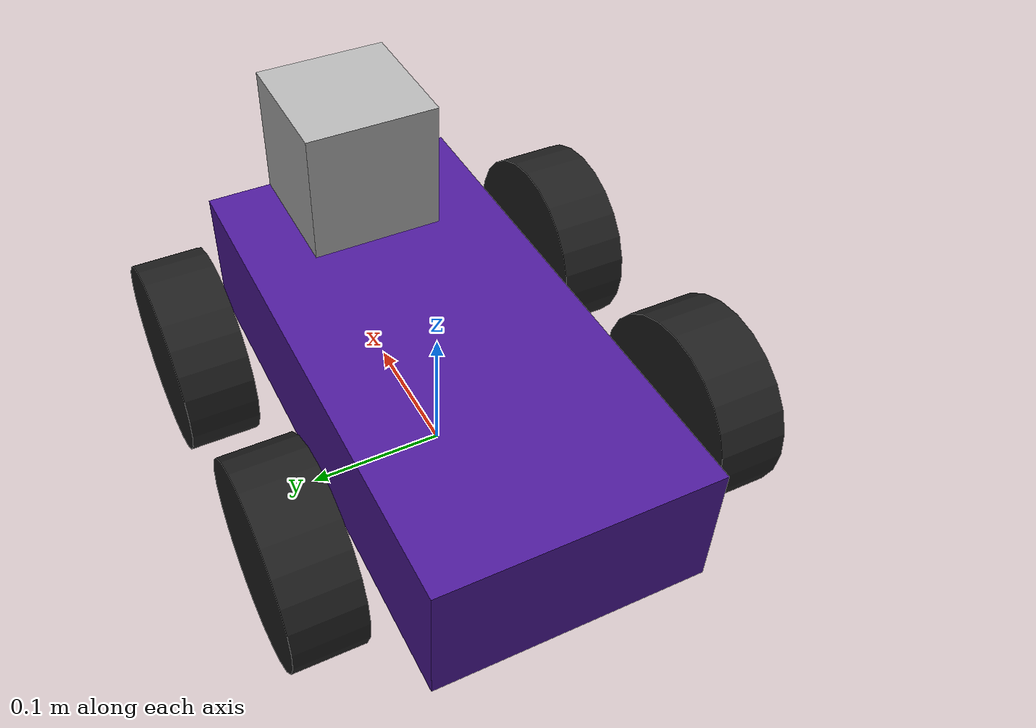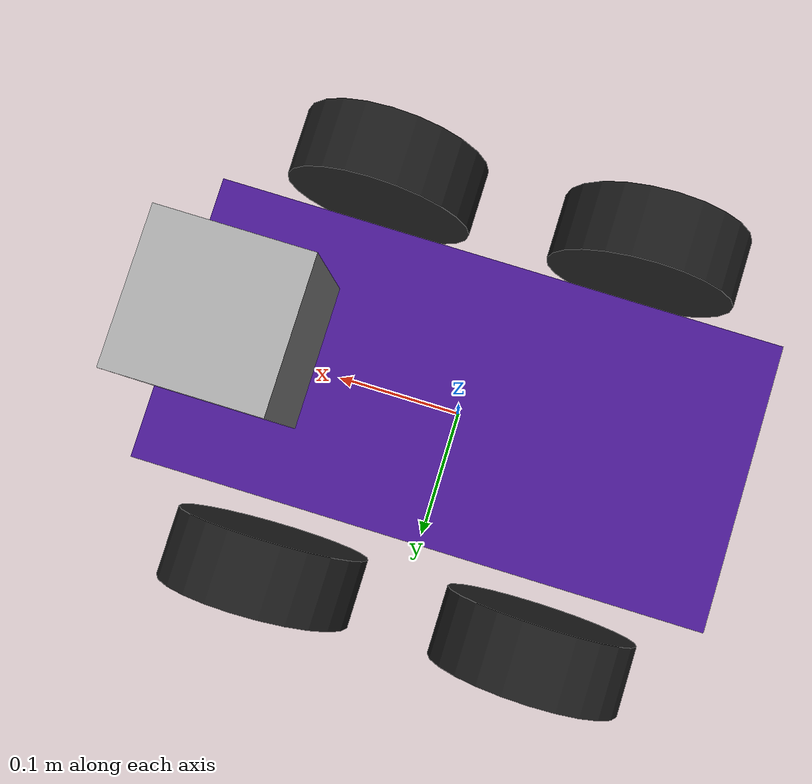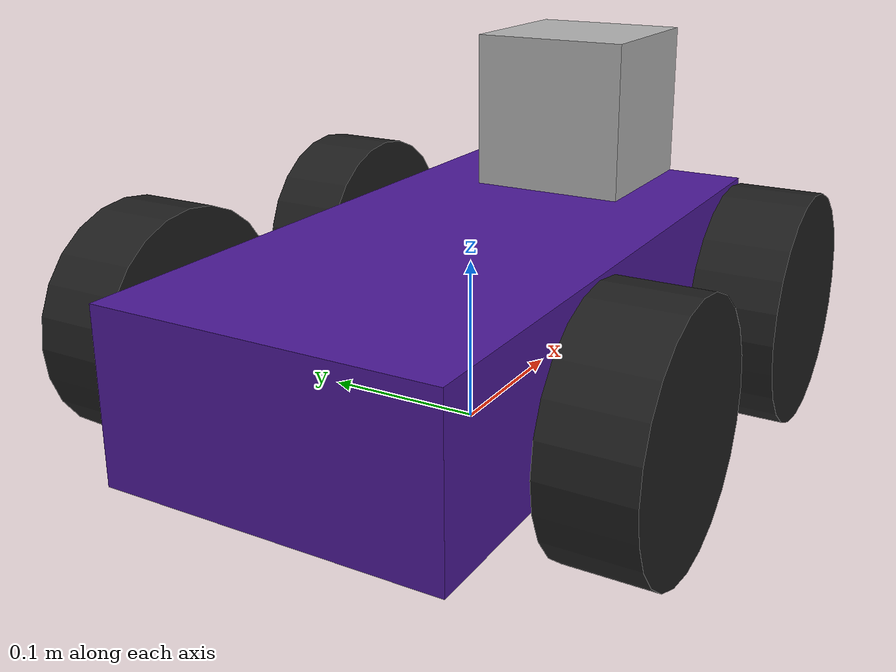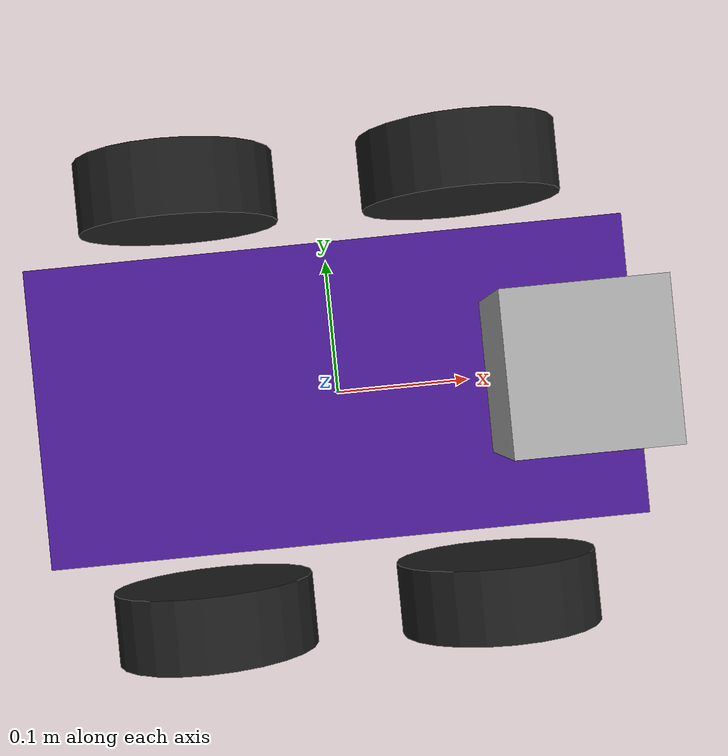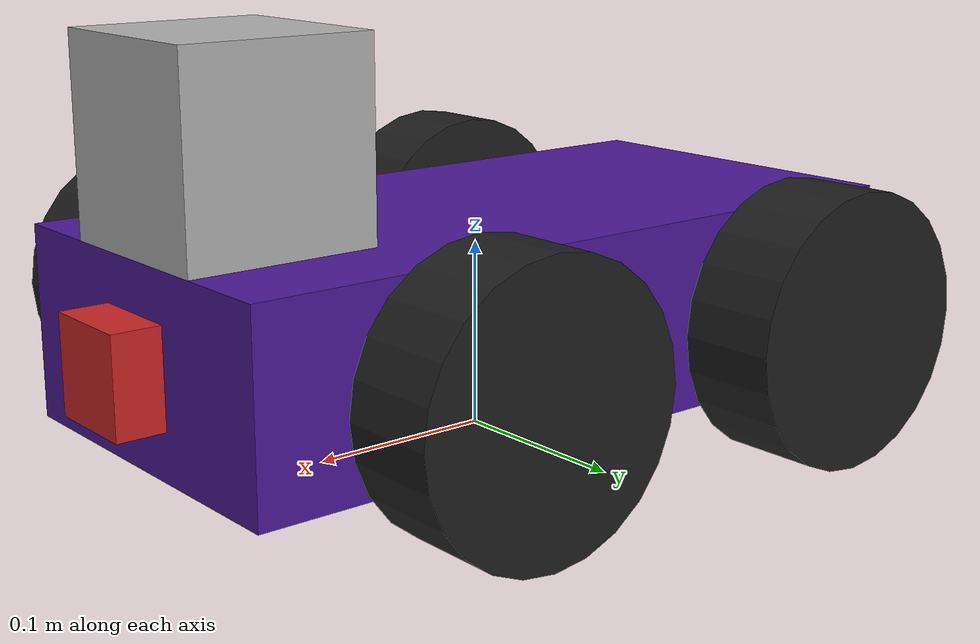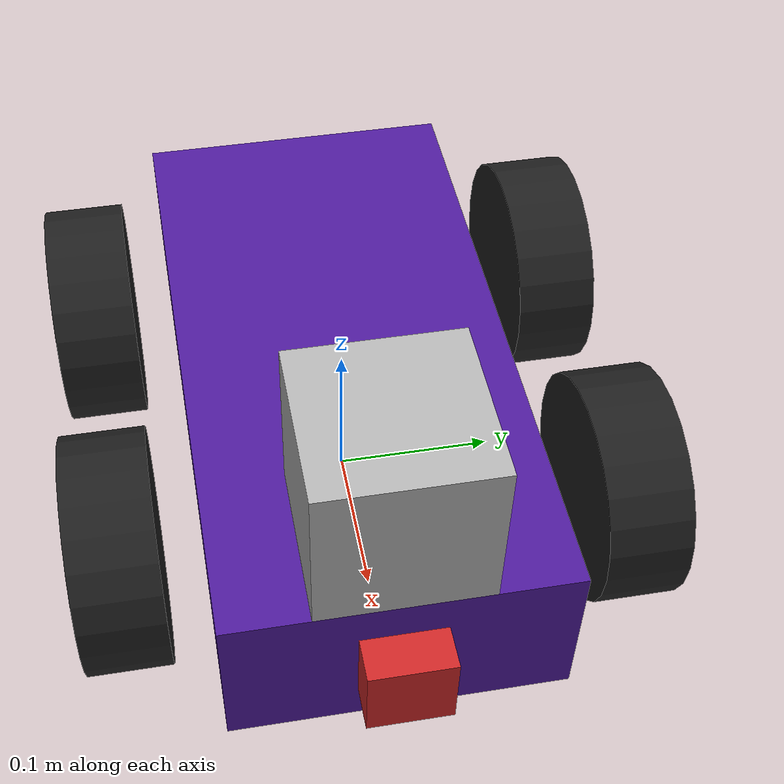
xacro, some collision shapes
<?xml version='1.0'?>

<robot name="my_robot" xmlns:xacro="http://www.ros.org/wiki/xacro">

  <xacro:include filename="$(find my_robot)/urdf/my_robot.gazebo" />

  <link name="robot_footprint"></link>

  <joint name="robot_footprint_joint" type="fixed">
    <origin xyz="0 0 0.07" rpy="0 0 0" />
    <parent link="robot_footprint"/>
    <child link="chassis" />
  </joint>

  <link name='chassis'>
    <pose>0 0 0.1 0 0 0</pose>

    <inertial>
      <mass value="15.0"/>
      <origin xyz="0.0 0 0" rpy=" 0 0 0"/>
      <inertia
          ixx="0.1" ixy="0" ixz="0"
          iyy="0.1" iyz="0"
          izz="0.1"
      />
    </inertial>

    <collision name='collision'>
      <origin xyz="0 0 0" rpy=" 0 0 0"/>
      <geometry>
        <box size=".5 .3 .1"/>
      </geometry>
    </collision>

    <visual name='chassis_visual'>
      <origin xyz="0 0 0" rpy=" 0 0 0"/>
      <geometry>
        <box size=".4 .2 .1"/>
      </geometry>
    </visual>

  </link>

   <link name='left_wheel_f'>

    <inertial>
      <mass value="5.0"/>
      <origin xyz="0 0 0" rpy=" 0 1.5707 1.5707"/>
      <inertia
          ixx="0.1" ixy="0" ixz="0"
          iyy="0.1" iyz="0"
          izz="0.1"
      />
    </inertial>

    <collision>
     <origin xyz="0 0 0" rpy=" 0 1.5707 1.5707"/>
      <geometry>
        <cylinder radius="0.07" length="0.05"/>
      </geometry>
    </collision>

    <visual>
      <origin xyz="0 0 0" rpy=" 0 1.5707 1.5707"/>
      <geometry>
        <cylinder radius="0.07" length="0.05"/>
      </geometry>
    </visual>

  </link>

  <joint type="continuous" name="left_wheel_hinge_f">
    <origin xyz="0.10 0.15 0" rpy="0 0 0"/>
    <child link="left_wheel_f"/>
    <parent link="chassis"/>
    <axis xyz="0 1 0" rpy="0 0 0"/>
    <limit effort="10000" velocity="1000"/>
    <dynamics damping="1.0" friction="1.0"/>
  </joint>

<link name='right_wheel_f'>

    <inertial>
      <mass value="5.0"/>
      <origin xyz="0 0 0" rpy=" 0 1.5707 1.5707"/>
      <inertia
          ixx="0.1" ixy="0" ixz="0"
          iyy="0.1" iyz="0"
          izz="0.1"
      />
    </inertial>

    <collision>
      <origin xyz="0 0 0" rpy=" 0 1.5707 1.5707"/>
      <geometry>
        <cylinder radius="0.07" length="0.05"/>
      </geometry>
    </collision>

    <visual>
      <origin xyz="0 0 0" rpy=" 0 1.5707 1.5707"/>
      <geometry>
        <cylinder radius="0.07" length="0.05"/>
      </geometry>
    </visual>

  </link>

  <joint type="continuous" name="right_wheel_hinge_f">
    <origin xyz="0.10 -0.15 0" rpy="0 0 0"/>
    <child link="right_wheel_f"/>
    <parent link="chassis"/>
    <axis xyz="0 1 0" rpy="0 0 0"/>
    <limit effort="10000" velocity="1000"/>
    <dynamics damping="1.0" friction="1.0"/>
  </joint>

  <link name='left_wheel_b'>

    <inertial>
      <mass value="5.0"/>
      <origin xyz="0 0 0" rpy=" 0 1.5707 1.5707"/>
      <inertia
          ixx="0.1" ixy="0" ixz="0"
          iyy="0.1" iyz="0"
          izz="0.1"
      />
    </inertial>

    <collision>
     <origin xyz="0 0 0" rpy=" 0 1.5707 1.5707"/>
      <geometry>
        <cylinder radius="0.07" length="0.05"/>
      </geometry>
    </collision>

    <visual>
      <origin xyz="0 0 0" rpy=" 0 1.5707 1.5707"/>
      <geometry>
        <cylinder radius="0.07" length="0.05"/>
      </geometry>
    </visual>

  </link>

  <joint type="continuous" name="left_wheel_hinge_b">
    <origin xyz="-0.10 0.15 0" rpy="0 0 0"/>
    <child link="left_wheel_b"/>
    <parent link="chassis"/>
    <axis xyz="0 1 0" rpy="0 0 0"/>
    <limit effort="10000" velocity="1000"/>
    <dynamics damping="1.0" friction="1.0"/>
  </joint>

<link name='right_wheel_b'>

    <inertial>
      <mass value="5.0"/>
      <origin xyz="0 0 0" rpy=" 0 1.5707 1.5707"/>
      <inertia
          ixx="0.1" ixy="0" ixz="0"
          iyy="0.1" iyz="0"
          izz="0.1"
      />
    </inertial>

    <collision>
      <origin xyz="0 0 0" rpy=" 0 1.5707 1.5707"/>
      <geometry>
        <cylinder radius="0.07" length="0.05"/>
      </geometry>
    </collision>

    <visual>
      <origin xyz="0 0 0" rpy=" 0 1.5707 1.5707"/>
      <geometry>
        <cylinder radius="0.07" length="0.05"/>
      </geometry>
    </visual>

  </link>

  <joint type="continuous" name="right_wheel_hinge_b">
    <origin xyz="-0.10 -0.15 0" rpy="0 0 0"/>
    <child link="right_wheel_b"/>
    <parent link="chassis"/>
    <axis xyz="0 1 0" rpy="0 0 0"/>
    <limit effort="10000" velocity="1000"/>
    <dynamics damping="1.0" friction="1.0"/>
  </joint>

  <link name='camera_link'>

    <inertial>
      <mass value="0.1"/>
      <origin xyz="0 0 0" rpy=" 0 0 0"/>
      <inertia
          ixx="1e-6" ixy="0" ixz="0"
          iyy="1e-6" iyz="0"
          izz="1e-6"
      />
    </inertial>

    <collision>
      <origin xyz="0 0 0" rpy=" 0 0 0"/>
      <geometry>
        <box size=".05 .05 .05"/>
      </geometry>
    </collision>

    <visual>
      <origin xyz="0 0 0" rpy=" 0 0 0"/>
      <geometry>
        <box size=".05 .05 .05"/>
      </geometry>
    </visual>

  </link>

  <joint type="fixed" name="camera_joint">
    <origin xyz="0.2 0 0" rpy="0 0 0"/>
    <child link="camera_link"/>
    <parent link="chassis"/>
    <axis xyz="0 1 0" rpy="0 0 0"/>
    <limit effort="10000" velocity="1000"/>
    <dynamics damping="1.0" friction="1.0"/>
  </joint>

  <link name='hokuyo'>

    <inertial>
      <mass value="1e-5"/>
      <origin xyz="0 0 0" rpy=" 0 0 0"/>
      <inertia
          ixx="1e-6" ixy="0" ixz="0"
          iyy="1e-6" iyz="0"
          izz="1e-6"
      />
    </inertial>

    <collision>
      <origin xyz="0 0 0" rpy=" 0 0 0"/>
      <geometry>
        <box size=".1 .1 .1"/>
      </geometry>
    </collision>

    <visual>
      <origin xyz="0 0 0" rpy=" 0 0 0"/>
      <geometry>
        <mesh filename = "package://my_robot/meshes/hokuyo.dae"/>
      </geometry>
    </visual>

  </link>

  <joint type="fixed" name="hokuyo_joint">
    <origin xyz="0.15 0 0.1" rpy="0 0 0"/>
    <child link="hokuyo"/>
    <parent link="chassis"/>
    <axis xyz="0 1 0" rpy="0 0 0"/>
    <limit effort="10000" velocity="1000"/>
    <dynamics damping="1.0" friction="1.0"/>
  </joint>

  <joint name="camera_optical_joint" type="fixed">
    <origin xyz="0 0 0" rpy="-1.5707 0 -1.5707"/>
    <parent link="camera_link"/>
    <child link="camera_link_optical"/>
  </joint>

  <link name="camera_link_optical">
  </link>

  <gazebo reference="left_wheel_f">
    <material>Gazebo/FlatBlack</material>
  </gazebo>

  <gazebo reference="right_wheel_f">
    <material>Gazebo/FlatBlack</material>
  </gazebo>

  <gazebo reference="left_wheel_b">
    <material>Gazebo/FlatBlack</material>
  </gazebo>

  <gazebo reference="right_wheel_b">
    <material>Gazebo/FlatBlack</material>
  </gazebo>

  <gazebo reference="chassis">
    <material>Gazebo/Indigo</material>
  </gazebo>

  <gazebo reference="camera_link">
    <material>Gazebo/RedGlow</material>
  </gazebo>

</robot>
